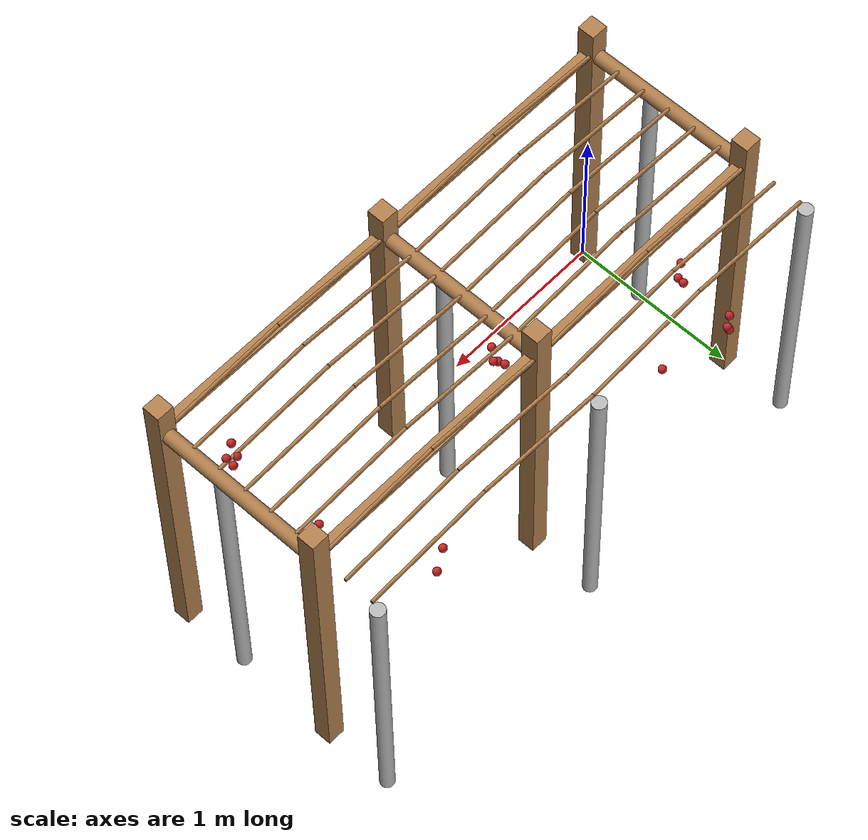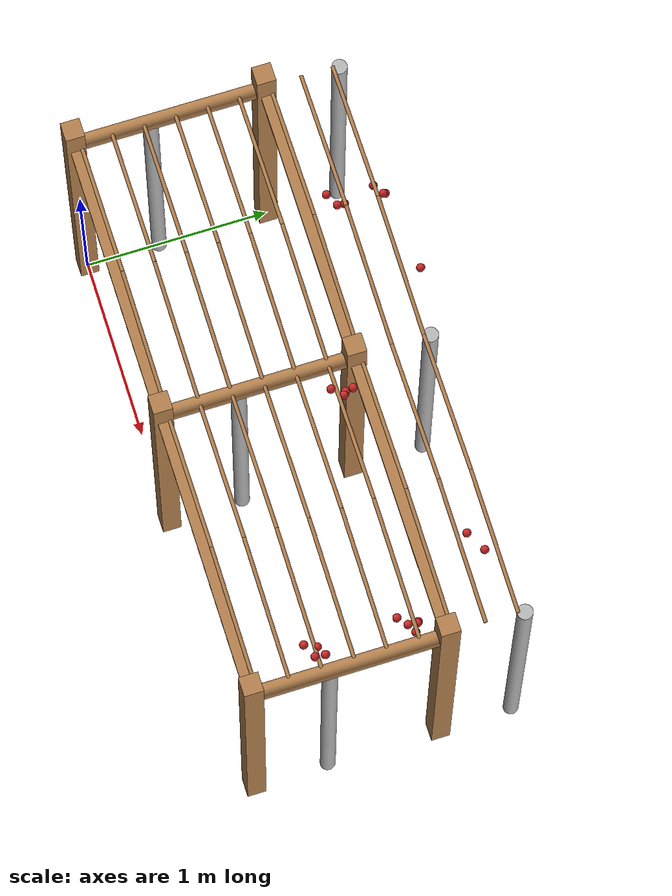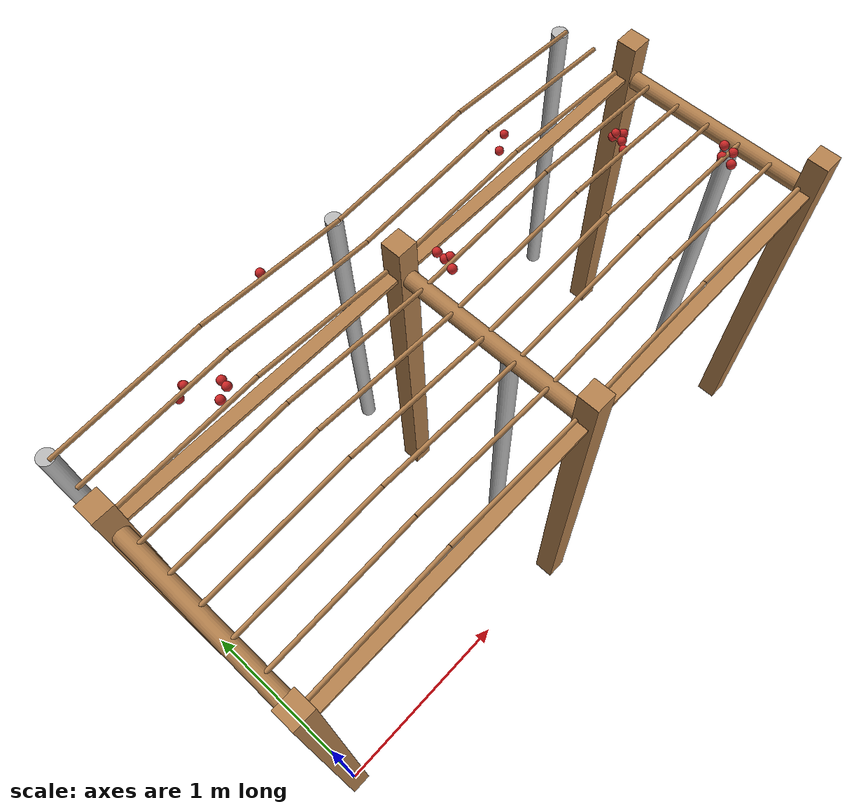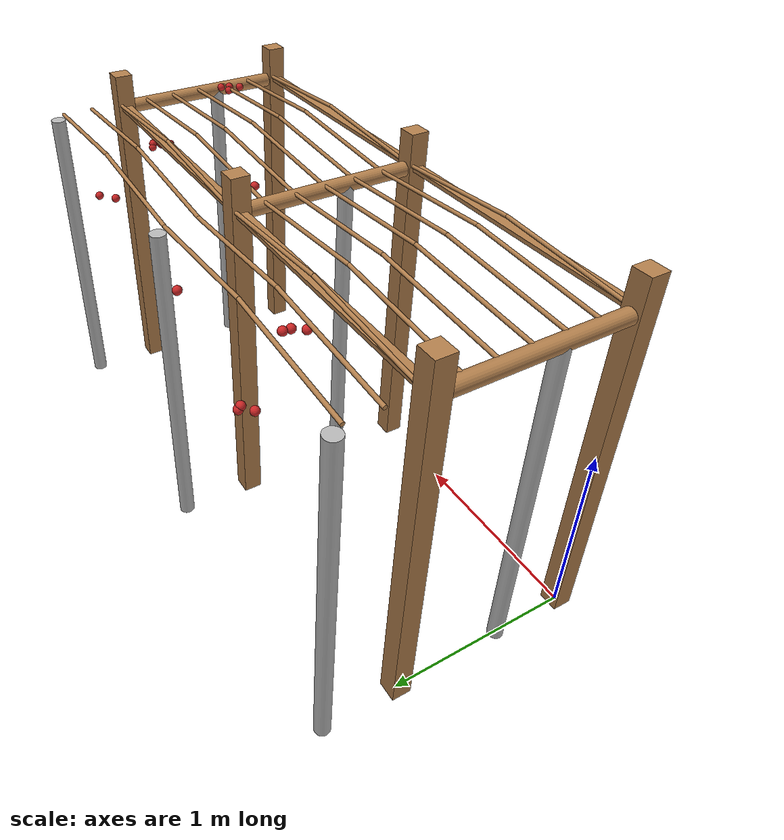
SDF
<sdf version="1.4">
 <model name="pergola">
  <include><name>post_0</name><uri>model://post</uri></include>
  <include><name>post_1</name><pose>0.0 1.0 0 0 0 0</pose><uri>model://post</uri></include>
  <include><name>post_11</name><pose>1.5 0.0 0 0 0 0</pose><uri>model://post</uri></include>
  <include><name>post_12</name><pose>1.5 1.0 0 0 0 0</pose><uri>model://post</uri></include>
  <include><name>post_22</name><pose>3.0 0.0 0 0 0 0</pose><uri>model://post</uri></include>
  <include><name>post_23</name><pose>3.0 1.0 0 0 0 0</pose><uri>model://post</uri></include>
  <link name="beam_0">
   <pose>0.75 0.0 1.81 0 0 0</pose>
   <collision name="collision"><geometry><box><size>1.5 0.06 0.02</size></box></geometry></collision>
   <visual name="visual">
    <geometry><box><size>1.5 0.06 0.02</size></box></geometry>
    <material><script><name>Gazebo/Wood</name></script></material>
   </visual>
   <inertial>
    <mass>5</mass>
    <inertia>
     <ixx>0.0016666666666666668</ixx>
     <ixy>0.0</ixy>
     <ixz>0.0</ixz>
     <iyy>0.9390000000000001</iyy>
     <iyz>0.0</iyz>
     <izz>0.9376666666666665</izz>
    </inertia>
   </inertial>
  </link>
  <link name="beam_1">
   <pose>0.75 1.0 1.81 0 0 0</pose>
   <collision name="collision"><geometry><box><size>1.5 0.06 0.02</size></box></geometry></collision>
   <visual name="visual">
    <geometry><box><size>1.5 0.06 0.02</size></box></geometry>
    <material><script><name>Gazebo/Wood</name></script></material>
   </visual>
   <inertial>
    <mass>5</mass>
    <inertia>
     <ixx>0.0016666666666666668</ixx>
     <ixy>0.0</ixy>
     <ixz>0.0</ixz>
     <iyy>0.9390000000000001</iyy>
     <iyz>0.0</iyz>
     <izz>0.9376666666666665</izz>
    </inertia>
   </inertial>
  </link>
  <link name="beam_11">
   <pose>2.25 0.0 1.81 0 0 0</pose>
   <collision name="collision"><geometry><box><size>1.5 0.06 0.02</size></box></geometry></collision>
   <visual name="visual">
    <geometry><box><size>1.5 0.06 0.02</size></box></geometry>
    <material><script><name>Gazebo/Wood</name></script></material>
   </visual>
   <inertial>
    <mass>5</mass>
    <inertia>
     <ixx>0.0016666666666666668</ixx>
     <ixy>0.0</ixy>
     <ixz>0.0</ixz>
     <iyy>0.9390000000000001</iyy>
     <iyz>0.0</iyz>
     <izz>0.9376666666666665</izz>
    </inertia>
   </inertial>
  </link>
  <link name="beam_12">
   <pose>2.25 1.0 1.81 0 0 0</pose>
   <collision name="collision"><geometry><box><size>1.5 0.06 0.02</size></box></geometry></collision>
   <visual name="visual">
    <geometry><box><size>1.5 0.06 0.02</size></box></geometry>
    <material><script><name>Gazebo/Wood</name></script></material>
   </visual>
   <inertial>
    <mass>5</mass>
    <inertia>
     <ixx>0.0016666666666666668</ixx>
     <ixy>0.0</ixy>
     <ixz>0.0</ixz>
     <iyy>0.9390000000000001</iyy>
     <iyz>0.0</iyz>
     <izz>0.9376666666666665</izz>
    </inertia>
   </inertial>
  </link>
  <include><name>tree_0</name><pose>0.0 0.4 0 0 0 0</pose><uri>model://tree_trunk</uri></include>
  <include><name>tree_1</name><pose>0.0 1.4 0 0 0 0</pose><uri>model://tree_trunk</uri></include>
  <include><name>tree_10</name><pose>1.5 0.4 0 0 0 0</pose><uri>model://tree_trunk</uri></include>
  <include><name>tree_11</name><pose>1.5 1.4 0 0 0 0</pose><uri>model://tree_trunk</uri></include>
  <include><name>tree_20</name><pose>3.0 0.4 0 0 0 0</pose><uri>model://tree_trunk</uri></include>
  <include><name>tree_21</name><pose>3.0 1.4 0 0 0 0</pose><uri>model://tree_trunk</uri></include>
  <link name="baseBranch_0">
   <pose>0.0 0.5 1.8 1.5707963267948966 0 0</pose>
   <collision name="collision">
    <geometry><cylinder><radius>0.04</radius><length>0.94</length></cylinder></geometry>
   </collision>
   <visual name="visual">
    <geometry><cylinder><radius>0.04</radius><length>0.94</length></cylinder></geometry>
    <material><script><name>Gazebo/WoodFloor</name></script></material>
   </visual>
   <inertial>
    <mass>10</mass>
    <inertia>
     <ixx>0.7403333333333334</ixx>
     <ixy>0.0</ixy>
     <ixz>0.0</ixz>
     <iyy>0.7403333333333334</iyy>
     <iyz>0.0</iyz>
     <izz>0.008</izz>
    </inertia>
   </inertial>
  </link>
  <link name="baseBranch_10">
   <pose>1.5 0.5 1.8 1.5707963267948966 0 0</pose>
   <collision name="collision">
    <geometry><cylinder><radius>0.04</radius><length>0.94</length></cylinder></geometry>
   </collision>
   <visual name="visual">
    <geometry><cylinder><radius>0.04</radius><length>0.94</length></cylinder></geometry>
    <material><script><name>Gazebo/WoodFloor</name></script></material>
   </visual>
   <inertial>
    <mass>10</mass>
    <inertia>
     <ixx>0.7403333333333334</ixx>
     <ixy>0.0</ixy>
     <ixz>0.0</ixz>
     <iyy>0.7403333333333334</iyy>
     <iyz>0.0</iyz>
     <izz>0.008</izz>
    </inertia>
   </inertial>
  </link>
  <link name="baseBranch_20">
   <pose>3.0 0.5 1.8 1.5707963267948966 0 0</pose>
   <collision name="collision">
    <geometry><cylinder><radius>0.04</radius><length>0.94</length></cylinder></geometry>
   </collision>
   <visual name="visual">
    <geometry><cylinder><radius>0.04</radius><length>0.94</length></cylinder></geometry>
    <material><script><name>Gazebo/WoodFloor</name></script></material>
   </visual>
   <inertial>
    <mass>10</mass>
    <inertia>
     <ixx>0.7403333333333334</ixx>
     <ixy>0.0</ixy>
     <ixz>0.0</ixz>
     <iyy>0.7403333333333334</iyy>
     <iyz>0.0</iyz>
     <izz>0.008</izz>
    </inertia>
   </inertial>
  </link>
  <link name="vine_0">
   <pose>0.375 0.03 1.85 0 1.5042281630190728 0</pose>
   <collision name="collision">
    <geometry><cylinder><radius>0.01</radius><length>0.7516648189186453</length></cylinder></geometry>
   </collision>
   <visual name="visual">
    <geometry><cylinder><radius>0.01</radius><length>0.7516648189186453</length></cylinder></geometry>
    <material><script><name>Gazebo/WoodFloor</name></script></material>
   </visual>
   <inertial>
    <mass>5</mass>
    <inertia>
     <ixx>0.23554166666666657</ixx>
     <ixy>0.0</ixy>
     <ixz>0.0</ixz>
     <iyy>0.23554166666666657</iyy>
     <iyz>0.0</iyz>
     <izz>0.00025</izz>
    </inertia>
   </inertial>
  </link>
  <link name="vine_1">
   <pose>1.125 0.03 1.85 0 -1.5042281630190728 0</pose>
   <collision name="collision">
    <geometry><cylinder><radius>0.01</radius><length>0.7516648189186453</length></cylinder></geometry>
   </collision>
   <visual name="visual">
    <geometry><cylinder><radius>0.01</radius><length>0.7516648189186453</length></cylinder></geometry>
    <material><script><name>Gazebo/WoodFloor</name></script></material>
   </visual>
   <inertial>
    <mass>5</mass>
    <inertia>
     <ixx>0.23554166666666657</ixx>
     <ixy>0.0</ixy>
     <ixz>0.0</ixz>
     <iyy>0.23554166666666657</iyy>
     <iyz>0.0</iyz>
     <izz>0.00025</izz>
    </inertia>
   </inertial>
  </link>
  <link name="vine_2">
   <pose>0.375 0.19666666666666666 1.85 0 1.5042281630190728 0</pose>
   <collision name="collision">
    <geometry><cylinder><radius>0.01</radius><length>0.7516648189186453</length></cylinder></geometry>
   </collision>
   <visual name="visual">
    <geometry><cylinder><radius>0.01</radius><length>0.7516648189186453</length></cylinder></geometry>
    <material><script><name>Gazebo/WoodFloor</name></script></material>
   </visual>
   <inertial>
    <mass>5</mass>
    <inertia>
     <ixx>0.23554166666666657</ixx>
     <ixy>0.0</ixy>
     <ixz>0.0</ixz>
     <iyy>0.23554166666666657</iyy>
     <iyz>0.0</iyz>
     <izz>0.00025</izz>
    </inertia>
   </inertial>
  </link>
  <link name="vine_3">
   <pose>1.125 0.19666666666666666 1.85 0 -1.5042281630190728 0</pose>
   <collision name="collision">
    <geometry><cylinder><radius>0.01</radius><length>0.7516648189186453</length></cylinder></geometry>
   </collision>
   <visual name="visual">
    <geometry><cylinder><radius>0.01</radius><length>0.7516648189186453</length></cylinder></geometry>
    <material><script><name>Gazebo/WoodFloor</name></script></material>
   </visual>
   <inertial>
    <mass>5</mass>
    <inertia>
     <ixx>0.23554166666666657</ixx>
     <ixy>0.0</ixy>
     <ixz>0.0</ixz>
     <iyy>0.23554166666666657</iyy>
     <iyz>0.0</iyz>
     <izz>0.00025</izz>
    </inertia>
   </inertial>
  </link>
  <link name="vine_4">
   <pose>0.375 0.3633333333333333 1.85 0 1.5042281630190728 0</pose>
   <collision name="collision">
    <geometry><cylinder><radius>0.01</radius><length>0.7516648189186453</length></cylinder></geometry>
   </collision>
   <visual name="visual">
    <geometry><cylinder><radius>0.01</radius><length>0.7516648189186453</length></cylinder></geometry>
    <material><script><name>Gazebo/WoodFloor</name></script></material>
   </visual>
   <inertial>
    <mass>5</mass>
    <inertia>
     <ixx>0.23554166666666657</ixx>
     <ixy>0.0</ixy>
     <ixz>0.0</ixz>
     <iyy>0.23554166666666657</iyy>
     <iyz>0.0</iyz>
     <izz>0.00025</izz>
    </inertia>
   </inertial>
  </link>
  <link name="vine_5">
   <pose>1.125 0.3633333333333333 1.85 0 -1.5042281630190728 0</pose>
   <collision name="collision">
    <geometry><cylinder><radius>0.01</radius><length>0.7516648189186453</length></cylinder></geometry>
   </collision>
   <visual name="visual">
    <geometry><cylinder><radius>0.01</radius><length>0.7516648189186453</length></cylinder></geometry>
    <material><script><name>Gazebo/WoodFloor</name></script></material>
   </visual>
   <inertial>
    <mass>5</mass>
    <inertia>
     <ixx>0.23554166666666657</ixx>
     <ixy>0.0</ixy>
     <ixz>0.0</ixz>
     <iyy>0.23554166666666657</iyy>
     <iyz>0.0</iyz>
     <izz>0.00025</izz>
    </inertia>
   </inertial>
  </link>
  <link name="vine_6">
   <pose>0.375 0.53 1.85 0 1.5042281630190728 0</pose>
   <collision name="collision">
    <geometry><cylinder><radius>0.01</radius><length>0.7516648189186453</length></cylinder></geometry>
   </collision>
   <visual name="visual">
    <geometry><cylinder><radius>0.01</radius><length>0.7516648189186453</length></cylinder></geometry>
    <material><script><name>Gazebo/WoodFloor</name></script></material>
   </visual>
   <inertial>
    <mass>5</mass>
    <inertia>
     <ixx>0.23554166666666657</ixx>
     <ixy>0.0</ixy>
     <ixz>0.0</ixz>
     <iyy>0.23554166666666657</iyy>
     <iyz>0.0</iyz>
     <izz>0.00025</izz>
    </inertia>
   </inertial>
  </link>
  <link name="vine_7">
   <pose>1.125 0.53 1.85 0 -1.5042281630190728 0</pose>
   <collision name="collision">
    <geometry><cylinder><radius>0.01</radius><length>0.7516648189186453</length></cylinder></geometry>
   </collision>
   <visual name="visual">
    <geometry><cylinder><radius>0.01</radius><length>0.7516648189186453</length></cylinder></geometry>
    <material><script><name>Gazebo/WoodFloor</name></script></material>
   </visual>
   <inertial>
    <mass>5</mass>
    <inertia>
     <ixx>0.23554166666666657</ixx>
     <ixy>0.0</ixy>
     <ixz>0.0</ixz>
     <iyy>0.23554166666666657</iyy>
     <iyz>0.0</iyz>
     <izz>0.00025</izz>
    </inertia>
   </inertial>
  </link>
  <link name="vine_8">
   <pose>0.375 0.6966666666666667 1.85 0 1.5042281630190728 0</pose>
   <collision name="collision">
    <geometry><cylinder><radius>0.01</radius><length>0.7516648189186453</length></cylinder></geometry>
   </collision>
   <visual name="visual">
    <geometry><cylinder><radius>0.01</radius><length>0.7516648189186453</length></cylinder></geometry>
    <material><script><name>Gazebo/WoodFloor</name></script></material>
   </visual>
   <inertial>
    <mass>5</mass>
    <inertia>
     <ixx>0.23554166666666657</ixx>
     <ixy>0.0</ixy>
     <ixz>0.0</ixz>
     <iyy>0.23554166666666657</iyy>
     <iyz>0.0</iyz>
     <izz>0.00025</izz>
    </inertia>
   </inertial>
  </link>
  <link name="vine_9">
   <pose>1.125 0.6966666666666667 1.85 0 -1.5042281630190728 0</pose>
   <collision name="collision">
    <geometry><cylinder><radius>0.01</radius><length>0.7516648189186453</length></cylinder></geometry>
   </collision>
   <visual name="visual">
    <geometry><cylinder><radius>0.01</radius><length>0.7516648189186453</length></cylinder></geometry>
    <material><script><name>Gazebo/WoodFloor</name></script></material>
   </visual>
   <inertial>
    <mass>5</mass>
    <inertia>
     <ixx>0.23554166666666657</ixx>
     <ixy>0.0</ixy>
     <ixz>0.0</ixz>
     <iyy>0.23554166666666657</iyy>
     <iyz>0.0</iyz>
     <izz>0.00025</izz>
    </inertia>
   </inertial>
  </link>
  <link name="vine_10">
   <pose>0.375 0.8633333333333333 1.85 0 1.5042281630190728 0</pose>
   <collision name="collision">
    <geometry><cylinder><radius>0.01</radius><length>0.7516648189186453</length></cylinder></geometry>
   </collision>
   <visual name="visual">
    <geometry><cylinder><radius>0.01</radius><length>0.7516648189186453</length></cylinder></geometry>
    <material><script><name>Gazebo/WoodFloor</name></script></material>
   </visual>
   <inertial>
    <mass>5</mass>
    <inertia>
     <ixx>0.23554166666666657</ixx>
     <ixy>0.0</ixy>
     <ixz>0.0</ixz>
     <iyy>0.23554166666666657</iyy>
     <iyz>0.0</iyz>
     <izz>0.00025</izz>
    </inertia>
   </inertial>
  </link>
  <link name="vine_11">
   <pose>1.125 0.8633333333333333 1.85 0 -1.5042281630190728 0</pose>
   <collision name="collision">
    <geometry><cylinder><radius>0.01</radius><length>0.7516648189186453</length></cylinder></geometry>
   </collision>
   <visual name="visual">
    <geometry><cylinder><radius>0.01</radius><length>0.7516648189186453</length></cylinder></geometry>
    <material><script><name>Gazebo/WoodFloor</name></script></material>
   </visual>
   <inertial>
    <mass>5</mass>
    <inertia>
     <ixx>0.23554166666666657</ixx>
     <ixy>0.0</ixy>
     <ixz>0.0</ixz>
     <iyy>0.23554166666666657</iyy>
     <iyz>0.0</iyz>
     <izz>0.00025</izz>
    </inertia>
   </inertial>
  </link>
  <link name="vine_12">
   <pose>0.375 1.03 1.85 0 1.5042281630190728 0</pose>
   <collision name="collision">
    <geometry><cylinder><radius>0.01</radius><length>0.7516648189186453</length></cylinder></geometry>
   </collision>
   <visual name="visual">
    <geometry><cylinder><radius>0.01</radius><length>0.7516648189186453</length></cylinder></geometry>
    <material><script><name>Gazebo/WoodFloor</name></script></material>
   </visual>
   <inertial>
    <mass>5</mass>
    <inertia>
     <ixx>0.23554166666666657</ixx>
     <ixy>0.0</ixy>
     <ixz>0.0</ixz>
     <iyy>0.23554166666666657</iyy>
     <iyz>0.0</iyz>
     <izz>0.00025</izz>
    </inertia>
   </inertial>
  </link>
  <link name="vine_13">
   <pose>1.125 1.03 1.85 0 -1.5042281630190728 0</pose>
   <collision name="collision">
    <geometry><cylinder><radius>0.01</radius><length>0.7516648189186453</length></cylinder></geometry>
   </collision>
   <visual name="visual">
    <geometry><cylinder><radius>0.01</radius><length>0.7516648189186453</length></cylinder></geometry>
    <material><script><name>Gazebo/WoodFloor</name></script></material>
   </visual>
   <inertial>
    <mass>5</mass>
    <inertia>
     <ixx>0.23554166666666657</ixx>
     <ixy>0.0</ixy>
     <ixz>0.0</ixz>
     <iyy>0.23554166666666657</iyy>
     <iyz>0.0</iyz>
     <izz>0.00025</izz>
    </inertia>
   </inertial>
  </link>
  <link name="vine_14">
   <pose>0.375 1.1966666666666665 1.85 0 1.5042281630190728 0</pose>
   <collision name="collision">
    <geometry><cylinder><radius>0.01</radius><length>0.7516648189186453</length></cylinder></geometry>
   </collision>
   <visual name="visual">
    <geometry><cylinder><radius>0.01</radius><length>0.7516648189186453</length></cylinder></geometry>
    <material><script><name>Gazebo/WoodFloor</name></script></material>
   </visual>
   <inertial>
    <mass>5</mass>
    <inertia>
     <ixx>0.23554166666666657</ixx>
     <ixy>0.0</ixy>
     <ixz>0.0</ixz>
     <iyy>0.23554166666666657</iyy>
     <iyz>0.0</iyz>
     <izz>0.00025</izz>
    </inertia>
   </inertial>
  </link>
  <link name="vine_15">
   <pose>1.125 1.1966666666666665 1.85 0 -1.5042281630190728 0</pose>
   <collision name="collision">
    <geometry><cylinder><radius>0.01</radius><length>0.7516648189186453</length></cylinder></geometry>
   </collision>
   <visual name="visual">
    <geometry><cylinder><radius>0.01</radius><length>0.7516648189186453</length></cylinder></geometry>
    <material><script><name>Gazebo/WoodFloor</name></script></material>
   </visual>
   <inertial>
    <mass>5</mass>
    <inertia>
     <ixx>0.23554166666666657</ixx>
     <ixy>0.0</ixy>
     <ixz>0.0</ixz>
     <iyy>0.23554166666666657</iyy>
     <iyz>0.0</iyz>
     <izz>0.00025</izz>
    </inertia>
   </inertial>
  </link>
  <link name="vine_16">
   <pose>0.375 1.3633333333333333 1.85 0 1.5042281630190728 0</pose>
   <collision name="collision">
    <geometry><cylinder><radius>0.01</radius><length>0.7516648189186453</length></cylinder></geometry>
   </collision>
   <visual name="visual">
    <geometry><cylinder><radius>0.01</radius><length>0.7516648189186453</length></cylinder></geometry>
    <material><script><name>Gazebo/WoodFloor</name></script></material>
   </visual>
   <inertial>
    <mass>5</mass>
    <inertia>
     <ixx>0.23554166666666657</ixx>
     <ixy>0.0</ixy>
     <ixz>0.0</ixz>
     <iyy>0.23554166666666657</iyy>
     <iyz>0.0</iyz>
     <izz>0.00025</izz>
    </inertia>
   </inertial>
  </link>
  <link name="vine_17">
   <pose>1.125 1.3633333333333333 1.85 0 -1.5042281630190728 0</pose>
   <collision name="collision">
    <geometry><cylinder><radius>0.01</radius><length>0.7516648189186453</length></cylinder></geometry>
   </collision>
   <visual name="visual">
    <geometry><cylinder><radius>0.01</radius><length>0.7516648189186453</length></cylinder></geometry>
    <material><script><name>Gazebo/WoodFloor</name></script></material>
   </visual>
   <inertial>
    <mass>5</mass>
    <inertia>
     <ixx>0.23554166666666657</ixx>
     <ixy>0.0</ixy>
     <ixz>0.0</ixz>
     <iyy>0.23554166666666657</iyy>
     <iyz>0.0</iyz>
     <izz>0.00025</izz>
    </inertia>
   </inertial>
  </link>
  <link name="vine_120">
   <pose>1.875 0.03 1.85 0 1.5042281630190728 0</pose>
   <collision name="collision">
    <geometry><cylinder><radius>0.01</radius><length>0.7516648189186453</length></cylinder></geometry>
   </collision>
   <visual name="visual">
    <geometry><cylinder><radius>0.01</radius><length>0.7516648189186453</length></cylinder></geometry>
    <material><script><name>Gazebo/WoodFloor</name></script></material>
   </visual>
   <inertial>
    <mass>5</mass>
    <inertia>
     <ixx>0.23554166666666657</ixx>
     <ixy>0.0</ixy>
     <ixz>0.0</ixz>
     <iyy>0.23554166666666657</iyy>
     <iyz>0.0</iyz>
     <izz>0.00025</izz>
    </inertia>
   </inertial>
  </link>
  <link name="vine_121">
   <pose>2.625 0.03 1.85 0 -1.5042281630190728 0</pose>
   <collision name="collision">
    <geometry><cylinder><radius>0.01</radius><length>0.7516648189186453</length></cylinder></geometry>
   </collision>
   <visual name="visual">
    <geometry><cylinder><radius>0.01</radius><length>0.7516648189186453</length></cylinder></geometry>
    <material><script><name>Gazebo/WoodFloor</name></script></material>
   </visual>
   <inertial>
    <mass>5</mass>
    <inertia>
     <ixx>0.23554166666666657</ixx>
     <ixy>0.0</ixy>
     <ixz>0.0</ixz>
     <iyy>0.23554166666666657</iyy>
     <iyz>0.0</iyz>
     <izz>0.00025</izz>
    </inertia>
   </inertial>
  </link>
  <link name="vine_122">
   <pose>1.875 0.19666666666666666 1.85 0 1.5042281630190728 0</pose>
   <collision name="collision">
    <geometry><cylinder><radius>0.01</radius><length>0.7516648189186453</length></cylinder></geometry>
   </collision>
   <visual name="visual">
    <geometry><cylinder><radius>0.01</radius><length>0.7516648189186453</length></cylinder></geometry>
    <material><script><name>Gazebo/WoodFloor</name></script></material>
   </visual>
   <inertial>
    <mass>5</mass>
    <inertia>
     <ixx>0.23554166666666657</ixx>
     <ixy>0.0</ixy>
     <ixz>0.0</ixz>
     <iyy>0.23554166666666657</iyy>
     <iyz>0.0</iyz>
     <izz>0.00025</izz>
    </inertia>
   </inertial>
  </link>
  <link name="vine_123">
   <pose>2.625 0.19666666666666666 1.85 0 -1.5042281630190728 0</pose>
   <collision name="collision">
    <geometry><cylinder><radius>0.01</radius><length>0.7516648189186453</length></cylinder></geometry>
   </collision>
   <visual name="visual">
    <geometry><cylinder><radius>0.01</radius><length>0.7516648189186453</length></cylinder></geometry>
    <material><script><name>Gazebo/WoodFloor</name></script></material>
   </visual>
   <inertial>
    <mass>5</mass>
    <inertia>
     <ixx>0.23554166666666657</ixx>
     <ixy>0.0</ixy>
     <ixz>0.0</ixz>
     <iyy>0.23554166666666657</iyy>
     <iyz>0.0</iyz>
     <izz>0.00025</izz>
    </inertia>
   </inertial>
  </link>
  <link name="vine_124">
   <pose>1.875 0.3633333333333333 1.85 0 1.5042281630190728 0</pose>
   <collision name="collision">
    <geometry><cylinder><radius>0.01</radius><length>0.7516648189186453</length></cylinder></geometry>
   </collision>
   <visual name="visual">
    <geometry><cylinder><radius>0.01</radius><length>0.7516648189186453</length></cylinder></geometry>
    <material><script><name>Gazebo/WoodFloor</name></script></material>
   </visual>
   <inertial>
    <mass>5</mass>
    <inertia>
     <ixx>0.23554166666666657</ixx>
     <ixy>0.0</ixy>
     <ixz>0.0</ixz>
     <iyy>0.23554166666666657</iyy>
     <iyz>0.0</iyz>
     <izz>0.00025</izz>
    </inertia>
   </inertial>
  </link>
  <link name="vine_125">
   <pose>2.625 0.3633333333333333 1.85 0 -1.5042281630190728 0</pose>
   <collision name="collision">
    <geometry><cylinder><radius>0.01</radius><length>0.7516648189186453</length></cylinder></geometry>
   </collision>
   <visual name="visual">
    <geometry><cylinder><radius>0.01</radius><length>0.7516648189186453</length></cylinder></geometry>
    <material><script><name>Gazebo/WoodFloor</name></script></material>
   </visual>
   <inertial>
    <mass>5</mass>
    <inertia>
     <ixx>0.23554166666666657</ixx>
     <ixy>0.0</ixy>
     <ixz>0.0</ixz>
     <iyy>0.23554166666666657</iyy>
     <iyz>0.0</iyz>
     <izz>0.00025</izz>
    </inertia>
   </inertial>
  </link>
  <link name="vine_126">
   <pose>1.875 0.53 1.85 0 1.5042281630190728 0</pose>
   <collision name="collision">
    <geometry><cylinder><radius>0.01</radius><length>0.7516648189186453</length></cylinder></geometry>
   </collision>
   <visual name="visual">
    <geometry><cylinder><radius>0.01</radius><length>0.7516648189186453</length></cylinder></geometry>
    <material><script><name>Gazebo/WoodFloor</name></script></material>
   </visual>
   <inertial>
    <mass>5</mass>
    <inertia>
     <ixx>0.23554166666666657</ixx>
     <ixy>0.0</ixy>
     <ixz>0.0</ixz>
     <iyy>0.23554166666666657</iyy>
     <iyz>0.0</iyz>
     <izz>0.00025</izz>
    </inertia>
   </inertial>
  </link>
  <link name="vine_127">
   <pose>2.625 0.53 1.85 0 -1.5042281630190728 0</pose>
   <collision name="collision">
    <geometry><cylinder><radius>0.01</radius><length>0.7516648189186453</length></cylinder></geometry>
   </collision>
   <visual name="visual">
    <geometry><cylinder><radius>0.01</radius><length>0.7516648189186453</length></cylinder></geometry>
    <material><script><name>Gazebo/WoodFloor</name></script></material>
   </visual>
   <inertial>
    <mass>5</mass>
    <inertia>
     <ixx>0.23554166666666657</ixx>
     <ixy>0.0</ixy>
     <ixz>0.0</ixz>
     <iyy>0.23554166666666657</iyy>
     <iyz>0.0</iyz>
     <izz>0.00025</izz>
    </inertia>
   </inertial>
  </link>
  <link name="vine_128">
   <pose>1.875 0.6966666666666667 1.85 0 1.5042281630190728 0</pose>
   <collision name="collision">
    <geometry><cylinder><radius>0.01</radius><length>0.7516648189186453</length></cylinder></geometry>
   </collision>
   <visual name="visual">
    <geometry><cylinder><radius>0.01</radius><length>0.7516648189186453</length></cylinder></geometry>
    <material><script><name>Gazebo/WoodFloor</name></script></material>
   </visual>
   <inertial>
    <mass>5</mass>
    <inertia>
     <ixx>0.23554166666666657</ixx>
     <ixy>0.0</ixy>
     <ixz>0.0</ixz>
     <iyy>0.23554166666666657</iyy>
     <iyz>0.0</iyz>
     <izz>0.00025</izz>
    </inertia>
   </inertial>
  </link>
  <link name="vine_129">
   <pose>2.625 0.6966666666666667 1.85 0 -1.5042281630190728 0</pose>
   <collision name="collision">
    <geometry><cylinder><radius>0.01</radius><length>0.7516648189186453</length></cylinder></geometry>
   </collision>
   <visual name="visual">
    <geometry><cylinder><radius>0.01</radius><length>0.7516648189186453</length></cylinder></geometry>
    <material><script><name>Gazebo/WoodFloor</name></script></material>
   </visual>
   <inertial>
    <mass>5</mass>
    <inertia>
     <ixx>0.23554166666666657</ixx>
     <ixy>0.0</ixy>
     <ixz>0.0</ixz>
     <iyy>0.23554166666666657</iyy>
     <iyz>0.0</iyz>
     <izz>0.00025</izz>
    </inertia>
   </inertial>
  </link>
  <link name="vine_130">
   <pose>1.875 0.8633333333333333 1.85 0 1.5042281630190728 0</pose>
   <collision name="collision">
    <geometry><cylinder><radius>0.01</radius><length>0.7516648189186453</length></cylinder></geometry>
   </collision>
   <visual name="visual">
    <geometry><cylinder><radius>0.01</radius><length>0.7516648189186453</length></cylinder></geometry>
    <material><script><name>Gazebo/WoodFloor</name></script></material>
   </visual>
   <inertial>
    <mass>5</mass>
    <inertia>
     <ixx>0.23554166666666657</ixx>
     <ixy>0.0</ixy>
     <ixz>0.0</ixz>
     <iyy>0.23554166666666657</iyy>
     <iyz>0.0</iyz>
     <izz>0.00025</izz>
    </inertia>
   </inertial>
  </link>
  <link name="vine_131">
   <pose>2.625 0.8633333333333333 1.85 0 -1.5042281630190728 0</pose>
   <collision name="collision">
    <geometry><cylinder><radius>0.01</radius><length>0.7516648189186453</length></cylinder></geometry>
   </collision>
   <visual name="visual">
    <geometry><cylinder><radius>0.01</radius><length>0.7516648189186453</length></cylinder></geometry>
    <material><script><name>Gazebo/WoodFloor</name></script></material>
   </visual>
   <inertial>
    <mass>5</mass>
    <inertia>
     <ixx>0.23554166666666657</ixx>
     <ixy>0.0</ixy>
     <ixz>0.0</ixz>
     <iyy>0.23554166666666657</iyy>
     <iyz>0.0</iyz>
     <izz>0.00025</izz>
    </inertia>
   </inertial>
  </link>
  <link name="vine_132">
   <pose>1.875 1.03 1.85 0 1.5042281630190728 0</pose>
   <collision name="collision">
    <geometry><cylinder><radius>0.01</radius><length>0.7516648189186453</length></cylinder></geometry>
   </collision>
   <visual name="visual">
    <geometry><cylinder><radius>0.01</radius><length>0.7516648189186453</length></cylinder></geometry>
    <material><script><name>Gazebo/WoodFloor</name></script></material>
   </visual>
   <inertial>
    <mass>5</mass>
    <inertia>
     <ixx>0.23554166666666657</ixx>
     <ixy>0.0</ixy>
     <ixz>0.0</ixz>
     <iyy>0.23554166666666657</iyy>
     <iyz>0.0</iyz>
     <izz>0.00025</izz>
    </inertia>
   </inertial>
  </link>
  <link name="vine_133">
   <pose>2.625 1.03 1.85 0 -1.5042281630190728 0</pose>
   <collision name="collision">
    <geometry><cylinder><radius>0.01</radius><length>0.7516648189186453</length></cylinder></geometry>
   </collision>
   <visual name="visual">
    <geometry><cylinder><radius>0.01</radius><length>0.7516648189186453</length></cylinder></geometry>
    <material><script><name>Gazebo/WoodFloor</name></script></material>
   </visual>
   <inertial>
    <mass>5</mass>
    <inertia>
     <ixx>0.23554166666666657</ixx>
     <ixy>0.0</ixy>
     <ixz>0.0</ixz>
     <iyy>0.23554166666666657</iyy>
     <iyz>0.0</iyz>
     <izz>0.00025</izz>
    </inertia>
   </inertial>
  </link>
  <link name="vine_134">
   <pose>1.875 1.1966666666666665 1.85 0 1.5042281630190728 0</pose>
   <collision name="collision">
    <geometry><cylinder><radius>0.01</radius><length>0.7516648189186453</length></cylinder></geometry>
   </collision>
   <visual name="visual">
    <geometry><cylinder><radius>0.01</radius><length>0.7516648189186453</length></cylinder></geometry>
    <material><script><name>Gazebo/WoodFloor</name></script></material>
   </visual>
   <inertial>
    <mass>5</mass>
    <inertia>
     <ixx>0.23554166666666657</ixx>
     <ixy>0.0</ixy>
     <ixz>0.0</ixz>
     <iyy>0.23554166666666657</iyy>
     <iyz>0.0</iyz>
     <izz>0.00025</izz>
    </inertia>
   </inertial>
  </link>
  <link name="vine_135">
   <pose>2.625 1.1966666666666665 1.85 0 -1.5042281630190728 0</pose>
   <collision name="collision">
    <geometry><cylinder><radius>0.01</radius><length>0.7516648189186453</length></cylinder></geometry>
   </collision>
   <visual name="visual">
    <geometry><cylinder><radius>0.01</radius><length>0.7516648189186453</length></cylinder></geometry>
    <material><script><name>Gazebo/WoodFloor</name></script></material>
   </visual>
   <inertial>
    <mass>5</mass>
    <inertia>
     <ixx>0.23554166666666657</ixx>
     <ixy>0.0</ixy>
     <ixz>0.0</ixz>
     <iyy>0.23554166666666657</iyy>
     <iyz>0.0</iyz>
     <izz>0.00025</izz>
    </inertia>
   </inertial>
  </link>
  <link name="vine_136">
   <pose>1.875 1.3633333333333333 1.85 0 1.5042281630190728 0</pose>
   <collision name="collision">
    <geometry><cylinder><radius>0.01</radius><length>0.7516648189186453</length></cylinder></geometry>
   </collision>
   <visual name="visual">
    <geometry><cylinder><radius>0.01</radius><length>0.7516648189186453</length></cylinder></geometry>
    <material><script><name>Gazebo/WoodFloor</name></script></material>
   </visual>
   <inertial>
    <mass>5</mass>
    <inertia>
     <ixx>0.23554166666666657</ixx>
     <ixy>0.0</ixy>
     <ixz>0.0</ixz>
     <iyy>0.23554166666666657</iyy>
     <iyz>0.0</iyz>
     <izz>0.00025</izz>
    </inertia>
   </inertial>
  </link>
  <link name="vine_137">
   <pose>2.625 1.3633333333333333 1.85 0 -1.5042281630190728 0</pose>
   <collision name="collision">
    <geometry><cylinder><radius>0.01</radius><length>0.7516648189186453</length></cylinder></geometry>
   </collision>
   <visual name="visual">
    <geometry><cylinder><radius>0.01</radius><length>0.7516648189186453</length></cylinder></geometry>
    <material><script><name>Gazebo/WoodFloor</name></script></material>
   </visual>
   <inertial>
    <mass>5</mass>
    <inertia>
     <ixx>0.23554166666666657</ixx>
     <ixy>0.0</ixy>
     <ixz>0.0</ixz>
     <iyy>0.23554166666666657</iyy>
     <iyz>0.0</iyz>
     <izz>0.00025</izz>
    </inertia>
   </inertial>
  </link>
  <link name="fruit_8">
   <pose>0.5482779546807313 1.4091182120607848 1.479081851594677 0 0 0</pose>
   <collision name="fruit_collision_8"><geometry><sphere><radius>0.022</radius></sphere></geometry></collision>
   <visual name="visual">
    <geometry><sphere><radius>0.022</radius></sphere></geometry>
    <material><script><name>Gazebo/Red</name></script></material>
   </visual>
   <inertial>
    <mass>0.05</mass>
    <inertia>
     <ixx>9.679999999999999e-06</ixx>
     <ixy>0.0</ixy>
     <ixz>0.0</ixz>
     <iyy>9.679999999999999e-06</iyy>
     <iyz>0.0</iyz>
     <izz>9.679999999999999e-06</izz>
    </inertia>
   </inertial>
   <sensor name="fruit_contact_8" type="contact">
    <contact><collision>fruit_collision_8</collision></contact>
   </sensor>
  </link>
  <link name="fruit_13">
   <pose>2.848089450355505 0.3142714252014062 1.8466460510268403 0 0 0</pose>
   <collision name="fruit_collision_13"><geometry><sphere><radius>0.022</radius></sphere></geometry></collision>
   <visual name="visual">
    <geometry><sphere><radius>0.022</radius></sphere></geometry>
    <material><script><name>Gazebo/Red</name></script></material>
   </visual>
   <inertial>
    <mass>0.05</mass>
    <inertia>
     <ixx>9.679999999999999e-06</ixx>
     <ixy>0.0</ixy>
     <ixz>0.0</ixz>
     <iyy>9.679999999999999e-06</iyy>
     <iyz>0.0</iyz>
     <izz>9.679999999999999e-06</izz>
    </inertia>
   </inertial>
   <sensor name="fruit_contact_13" type="contact">
    <contact><collision>fruit_collision_13</collision></contact>
   </sensor>
  </link>
  <link name="fruit_19">
   <pose>1.6348705805301693 0.8376227724217647 1.836426678085132 0 0 0</pose>
   <collision name="fruit_collision_19"><geometry><sphere><radius>0.022</radius></sphere></geometry></collision>
   <visual name="visual">
    <geometry><sphere><radius>0.022</radius></sphere></geometry>
    <material><script><name>Gazebo/Red</name></script></material>
   </visual>
   <inertial>
    <mass>0.05</mass>
    <inertia>
     <ixx>9.679999999999999e-06</ixx>
     <ixy>0.0</ixy>
     <ixz>0.0</ixz>
     <iyy>9.679999999999999e-06</iyy>
     <iyz>0.0</iyz>
     <izz>9.679999999999999e-06</izz>
    </inertia>
   </inertial>
   <sensor name="fruit_contact_19" type="contact">
    <contact><collision>fruit_collision_19</collision></contact>
   </sensor>
  </link>
  <link name="fruit_49">
   <pose>2.4544066696917217 1.2883626441916902 1.5179727676425678 0 0 0</pose>
   <collision name="fruit_collision_49"><geometry><sphere><radius>0.022</radius></sphere></geometry></collision>
   <visual name="visual">
    <geometry><sphere><radius>0.022</radius></sphere></geometry>
    <material><script><name>Gazebo/Red</name></script></material>
   </visual>
   <inertial>
    <mass>0.05</mass>
    <inertia>
     <ixx>9.679999999999999e-06</ixx>
     <ixy>0.0</ixy>
     <ixz>0.0</ixz>
     <iyy>9.679999999999999e-06</iyy>
     <iyz>0.0</iyz>
     <izz>9.679999999999999e-06</izz>
    </inertia>
   </inertial>
   <sensor name="fruit_contact_49" type="contact">
    <contact><collision>fruit_collision_49</collision></contact>
   </sensor>
  </link>
  <link name="fruit_51">
   <pose>0.6146637298665774 1.1368307541647495 1.7333503894595397 0 0 0</pose>
   <collision name="fruit_collision_51"><geometry><sphere><radius>0.022</radius></sphere></geometry></collision>
   <visual name="visual">
    <geometry><sphere><radius>0.022</radius></sphere></geometry>
    <material><script><name>Gazebo/Red</name></script></material>
   </visual>
   <inertial>
    <mass>0.05</mass>
    <inertia>
     <ixx>9.679999999999999e-06</ixx>
     <ixy>0.0</ixy>
     <ixz>0.0</ixz>
     <iyy>9.679999999999999e-06</iyy>
     <iyz>0.0</iyz>
     <izz>9.679999999999999e-06</izz>
    </inertia>
   </inertial>
   <sensor name="fruit_contact_51" type="contact">
    <contact><collision>fruit_collision_51</collision></contact>
   </sensor>
  </link>
  <link name="fruit_69">
   <pose>2.7906493379530777 0.813387619196711 1.607562831936535 0 0 0</pose>
   <collision name="fruit_collision_69"><geometry><sphere><radius>0.022</radius></sphere></geometry></collision>
   <visual name="visual">
    <geometry><sphere><radius>0.022</radius></sphere></geometry>
    <material><script><name>Gazebo/Red</name></script></material>
   </visual>
   <inertial>
    <mass>0.05</mass>
    <inertia>
     <ixx>9.679999999999999e-06</ixx>
     <ixy>0.0</ixy>
     <ixz>0.0</ixz>
     <iyy>9.679999999999999e-06</iyy>
     <iyz>0.0</iyz>
     <izz>9.679999999999999e-06</izz>
    </inertia>
   </inertial>
   <sensor name="fruit_contact_69" type="contact">
    <contact><collision>fruit_collision_69</collision></contact>
   </sensor>
  </link>
  <link name="fruit_92">
   <pose>1.1259518562281237 1.4693358065437605 1.7313532808984025 0 0 0</pose>
   <collision name="fruit_collision_92"><geometry><sphere><radius>0.022</radius></sphere></geometry></collision>
   <visual name="visual">
    <geometry><sphere><radius>0.022</radius></sphere></geometry>
    <material><script><name>Gazebo/Red</name></script></material>
   </visual>
   <inertial>
    <mass>0.05</mass>
    <inertia>
     <ixx>9.679999999999999e-06</ixx>
     <ixy>0.0</ixy>
     <ixz>0.0</ixz>
     <iyy>9.679999999999999e-06</iyy>
     <iyz>0.0</iyz>
     <izz>9.679999999999999e-06</izz>
    </inertia>
   </inertial>
   <sensor name="fruit_contact_92" type="contact">
    <contact><collision>fruit_collision_92</collision></contact>
   </sensor>
  </link>
  <link name="fruit_117">
   <pose>2.9178641443671482 0.35042993490082935 1.833679869842384 0 0 0</pose>
   <collision name="fruit_collision_117"><geometry><sphere><radius>0.022</radius></sphere></geometry></collision>
   <visual name="visual">
    <geometry><sphere><radius>0.022</radius></sphere></geometry>
    <material><script><name>Gazebo/Red</name></script></material>
   </visual>
   <inertial>
    <mass>0.05</mass>
    <inertia>
     <ixx>9.679999999999999e-06</ixx>
     <ixy>0.0</ixy>
     <ixz>0.0</ixz>
     <iyy>9.679999999999999e-06</iyy>
     <iyz>0.0</iyz>
     <izz>9.679999999999999e-06</izz>
    </inertia>
   </inertial>
   <sensor name="fruit_contact_117" type="contact">
    <contact><collision>fruit_collision_117</collision></contact>
   </sensor>
  </link>
  <link name="fruit_128">
   <pose>1.6581525865087519 0.9447953229121153 1.8282137166702062 0 0 0</pose>
   <collision name="fruit_collision_128"><geometry><sphere><radius>0.022</radius></sphere></geometry></collision>
   <visual name="visual">
    <geometry><sphere><radius>0.022</radius></sphere></geometry>
    <material><script><name>Gazebo/Red</name></script></material>
   </visual>
   <inertial>
    <mass>0.05</mass>
    <inertia>
     <ixx>9.679999999999999e-06</ixx>
     <ixy>0.0</ixy>
     <ixz>0.0</ixz>
     <iyy>9.679999999999999e-06</iyy>
     <iyz>0.0</iyz>
     <izz>9.679999999999999e-06</izz>
    </inertia>
   </inertial>
   <sensor name="fruit_contact_128" type="contact">
    <contact><collision>fruit_collision_128</collision></contact>
   </sensor>
  </link>
  <link name="fruit_129">
   <pose>2.8364668953108723 0.8567459933208134 1.5961980306429753 0 0 0</pose>
   <collision name="fruit_collision_129"><geometry><sphere><radius>0.022</radius></sphere></geometry></collision>
   <visual name="visual">
    <geometry><sphere><radius>0.022</radius></sphere></geometry>
    <material><script><name>Gazebo/Red</name></script></material>
   </visual>
   <inertial>
    <mass>0.05</mass>
    <inertia>
     <ixx>9.679999999999999e-06</ixx>
     <ixy>0.0</ixy>
     <ixz>0.0</ixz>
     <iyy>9.679999999999999e-06</iyy>
     <iyz>0.0</iyz>
     <izz>9.679999999999999e-06</izz>
    </inertia>
   </inertial>
   <sensor name="fruit_contact_129" type="contact">
    <contact><collision>fruit_collision_129</collision></contact>
   </sensor>
  </link>
  <link name="fruit_163">
   <pose>1.6623607863036787 0.904708163216211 1.8151086583840443 0 0 0</pose>
   <collision name="fruit_collision_163"><geometry><sphere><radius>0.022</radius></sphere></geometry></collision>
   <visual name="visual">
    <geometry><sphere><radius>0.022</radius></sphere></geometry>
    <material><script><name>Gazebo/Red</name></script></material>
   </visual>
   <inertial>
    <mass>0.05</mass>
    <inertia>
     <ixx>9.679999999999999e-06</ixx>
     <ixy>0.0</ixy>
     <ixz>0.0</ixz>
     <iyy>9.679999999999999e-06</iyy>
     <iyz>0.0</iyz>
     <izz>9.679999999999999e-06</izz>
    </inertia>
   </inertial>
   <sensor name="fruit_contact_163" type="contact">
    <contact><collision>fruit_collision_163</collision></contact>
   </sensor>
  </link>
  <link name="fruit_188">
   <pose>2.872797293493202 0.37559798561432267 1.827247316151945 0 0 0</pose>
   <collision name="fruit_collision_188"><geometry><sphere><radius>0.022</radius></sphere></geometry></collision>
   <visual name="visual">
    <geometry><sphere><radius>0.022</radius></sphere></geometry>
    <material><script><name>Gazebo/Red</name></script></material>
   </visual>
   <inertial>
    <mass>0.05</mass>
    <inertia>
     <ixx>9.679999999999999e-06</ixx>
     <ixy>0.0</ixy>
     <ixz>0.0</ixz>
     <iyy>9.679999999999999e-06</iyy>
     <iyz>0.0</iyz>
     <izz>9.679999999999999e-06</izz>
    </inertia>
   </inertial>
   <sensor name="fruit_contact_188" type="contact">
    <contact><collision>fruit_collision_188</collision></contact>
   </sensor>
  </link>
  <link name="fruit_250">
   <pose>1.679885719844005 0.8915157581936239 1.823773875738964 0 0 0</pose>
   <collision name="fruit_collision_250"><geometry><sphere><radius>0.022</radius></sphere></geometry></collision>
   <visual name="visual">
    <geometry><sphere><radius>0.022</radius></sphere></geometry>
    <material><script><name>Gazebo/Red</name></script></material>
   </visual>
   <inertial>
    <mass>0.05</mass>
    <inertia>
     <ixx>9.679999999999999e-06</ixx>
     <ixy>0.0</ixy>
     <ixz>0.0</ixz>
     <iyy>9.679999999999999e-06</iyy>
     <iyz>0.0</iyz>
     <izz>9.679999999999999e-06</izz>
    </inertia>
   </inertial>
   <sensor name="fruit_contact_250" type="contact">
    <contact><collision>fruit_collision_250</collision></contact>
   </sensor>
  </link>
  <link name="fruit_259">
   <pose>2.882977114524401 0.8821969104840268 1.5922234949311669 0 0 0</pose>
   <collision name="fruit_collision_259"><geometry><sphere><radius>0.022</radius></sphere></geometry></collision>
   <visual name="visual">
    <geometry><sphere><radius>0.022</radius></sphere></geometry>
    <material><script><name>Gazebo/Red</name></script></material>
   </visual>
   <inertial>
    <mass>0.05</mass>
    <inertia>
     <ixx>9.679999999999999e-06</ixx>
     <ixy>0.0</ixy>
     <ixz>0.0</ixz>
     <iyy>9.679999999999999e-06</iyy>
     <iyz>0.0</iyz>
     <izz>9.679999999999999e-06</izz>
    </inertia>
   </inertial>
   <sensor name="fruit_contact_259" type="contact">
    <contact><collision>fruit_collision_259</collision></contact>
   </sensor>
  </link>
  <link name="fruit_274">
   <pose>0.6025066808552686 1.4563056328952162 1.4647990872765586 0 0 0</pose>
   <collision name="fruit_collision_274"><geometry><sphere><radius>0.022</radius></sphere></geometry></collision>
   <visual name="visual">
    <geometry><sphere><radius>0.022</radius></sphere></geometry>
    <material><script><name>Gazebo/Red</name></script></material>
   </visual>
   <inertial>
    <mass>0.05</mass>
    <inertia>
     <ixx>9.679999999999999e-06</ixx>
     <ixy>0.0</ixy>
     <ixz>0.0</ixz>
     <iyy>9.679999999999999e-06</iyy>
     <iyz>0.0</iyz>
     <izz>9.679999999999999e-06</izz>
    </inertia>
   </inertial>
   <sensor name="fruit_contact_274" type="contact">
    <contact><collision>fruit_collision_274</collision></contact>
   </sensor>
  </link>
  <link name="fruit_321">
   <pose>0.6800739665889537 1.2118254817540532 1.7116492428473442 0 0 0</pose>
   <collision name="fruit_collision_321"><geometry><sphere><radius>0.022</radius></sphere></geometry></collision>
   <visual name="visual">
    <geometry><sphere><radius>0.022</radius></sphere></geometry>
    <material><script><name>Gazebo/Red</name></script></material>
   </visual>
   <inertial>
    <mass>0.05</mass>
    <inertia>
     <ixx>9.679999999999999e-06</ixx>
     <ixy>0.0</ixy>
     <ixz>0.0</ixz>
     <iyy>9.679999999999999e-06</iyy>
     <iyz>0.0</iyz>
     <izz>9.679999999999999e-06</izz>
    </inertia>
   </inertial>
   <sensor name="fruit_contact_321" type="contact">
    <contact><collision>fruit_collision_321</collision></contact>
   </sensor>
  </link>
  <link name="fruit_404">
   <pose>2.5583772056516336 1.3476683560204328 1.5027497603445745 0 0 0</pose>
   <collision name="fruit_collision_404"><geometry><sphere><radius>0.022</radius></sphere></geometry></collision>
   <visual name="visual">
    <geometry><sphere><radius>0.022</radius></sphere></geometry>
    <material><script><name>Gazebo/Red</name></script></material>
   </visual>
   <inertial>
    <mass>0.05</mass>
    <inertia>
     <ixx>9.679999999999999e-06</ixx>
     <ixy>0.0</ixy>
     <ixz>0.0</ixz>
     <iyy>9.679999999999999e-06</iyy>
     <iyz>0.0</iyz>
     <izz>9.679999999999999e-06</izz>
    </inertia>
   </inertial>
   <sensor name="fruit_contact_404" type="contact">
    <contact><collision>fruit_collision_404</collision></contact>
   </sensor>
  </link>
  <link name="fruit_414">
   <pose>2.8460154587231976 0.9029282375611815 1.607092455274097 0 0 0</pose>
   <collision name="fruit_collision_414"><geometry><sphere><radius>0.022</radius></sphere></geometry></collision>
   <visual name="visual">
    <geometry><sphere><radius>0.022</radius></sphere></geometry>
    <material><script><name>Gazebo/Red</name></script></material>
   </visual>
   <inertial>
    <mass>0.05</mass>
    <inertia>
     <ixx>9.679999999999999e-06</ixx>
     <ixy>0.0</ixy>
     <ixz>0.0</ixz>
     <iyy>9.679999999999999e-06</iyy>
     <iyz>0.0</iyz>
     <izz>9.679999999999999e-06</izz>
    </inertia>
   </inertial>
   <sensor name="fruit_contact_414" type="contact">
    <contact><collision>fruit_collision_414</collision></contact>
   </sensor>
  </link>
  <link name="fruit_426">
   <pose>2.835296176270981 0.9096816263225579 1.5888357005103375 0 0 0</pose>
   <collision name="fruit_collision_426"><geometry><sphere><radius>0.022</radius></sphere></geometry></collision>
   <visual name="visual">
    <geometry><sphere><radius>0.022</radius></sphere></geometry>
    <material><script><name>Gazebo/Red</name></script></material>
   </visual>
   <inertial>
    <mass>0.05</mass>
    <inertia>
     <ixx>9.679999999999999e-06</ixx>
     <ixy>0.0</ixy>
     <ixz>0.0</ixz>
     <iyy>9.679999999999999e-06</iyy>
     <iyz>0.0</iyz>
     <izz>9.679999999999999e-06</izz>
    </inertia>
   </inertial>
   <sensor name="fruit_contact_426" type="contact">
    <contact><collision>fruit_collision_426</collision></contact>
   </sensor>
  </link>
  <link name="fruit_447">
   <pose>0.6761680312244852 1.1750376956744928 1.7127170728534868 0 0 0</pose>
   <collision name="fruit_collision_447"><geometry><sphere><radius>0.022</radius></sphere></geometry></collision>
   <visual name="visual">
    <geometry><sphere><radius>0.022</radius></sphere></geometry>
    <material><script><name>Gazebo/Red</name></script></material>
   </visual>
   <inertial>
    <mass>0.05</mass>
    <inertia>
     <ixx>9.679999999999999e-06</ixx>
     <ixy>0.0</ixy>
     <ixz>0.0</ixz>
     <iyy>9.679999999999999e-06</iyy>
     <iyz>0.0</iyz>
     <izz>9.679999999999999e-06</izz>
    </inertia>
   </inertial>
   <sensor name="fruit_contact_447" type="contact">
    <contact><collision>fruit_collision_447</collision></contact>
   </sensor>
  </link>
  <link name="fruit_465">
   <pose>0.6039489089991441 1.44456235941463 1.4778838449965706 0 0 0</pose>
   <collision name="fruit_collision_465"><geometry><sphere><radius>0.022</radius></sphere></geometry></collision>
   <visual name="visual">
    <geometry><sphere><radius>0.022</radius></sphere></geometry>
    <material><script><name>Gazebo/Red</name></script></material>
   </visual>
   <inertial>
    <mass>0.05</mass>
    <inertia>
     <ixx>9.679999999999999e-06</ixx>
     <ixy>0.0</ixy>
     <ixz>0.0</ixz>
     <iyy>9.679999999999999e-06</iyy>
     <iyz>0.0</iyz>
     <izz>9.679999999999999e-06</izz>
    </inertia>
   </inertial>
   <sensor name="fruit_contact_465" type="contact">
    <contact><collision>fruit_collision_465</collision></contact>
   </sensor>
  </link>
  <link name="fruit_484">
   <pose>2.9236292603988003 0.4020502298107257 1.8367388759084426 0 0 0</pose>
   <collision name="fruit_collision_484"><geometry><sphere><radius>0.022</radius></sphere></geometry></collision>
   <visual name="visual">
    <geometry><sphere><radius>0.022</radius></sphere></geometry>
    <material><script><name>Gazebo/Red</name></script></material>
   </visual>
   <inertial>
    <mass>0.05</mass>
    <inertia>
     <ixx>9.679999999999999e-06</ixx>
     <ixy>0.0</ixy>
     <ixz>0.0</ixz>
     <iyy>9.679999999999999e-06</iyy>
     <iyz>0.0</iyz>
     <izz>9.679999999999999e-06</izz>
    </inertia>
   </inertial>
   <sensor name="fruit_contact_484" type="contact">
    <contact><collision>fruit_collision_484</collision></contact>
   </sensor>
  </link>
 </model>
</sdf>
